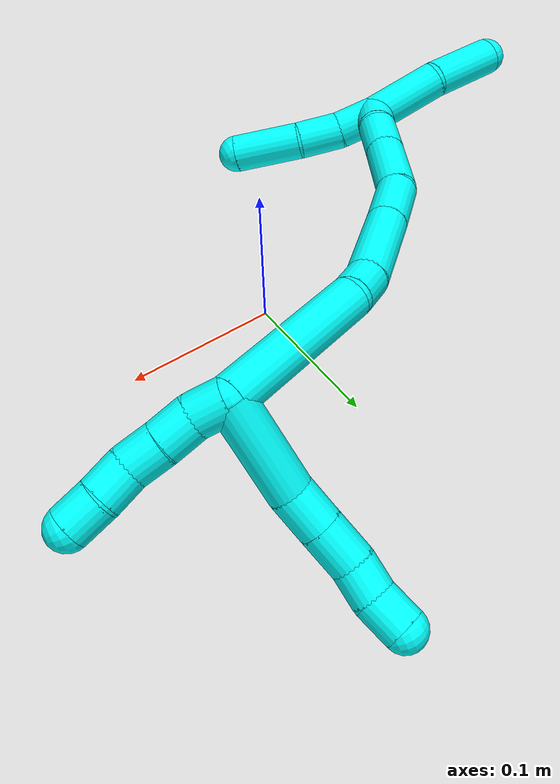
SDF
<sdf version="1.7">
 <world name="default">
  <model name="3">
   <static>0</static>
   <link name="3">
    <collision name="collision-cylinder-e_1_2_8">
     <pose>-0.002595 0.029356 0.002947 -1.47076 -0.087737 0.079381</pose>
     <geometry><cylinder><radius>0.0125</radius><length>0.059235</length></cylinder></geometry>
     <surface>
      <friction><ode><mu>1.16</mu><mu2>1.16</mu2><slip1>0</slip1><slip2>0</slip2></ode></friction>
      <contact><ode><kp>1e+06</kp><kd>1</kd><max_vel>0</max_vel><min_depth>0.001</min_depth></ode></contact>
     </surface>
    </collision>
    <visual name="visual-cylinder-e_1_2_8">
     <pose>-0.002595 0.029356 0.002947 -1.47076 -0.087737 0.079381</pose>
     <geometry><cylinder><radius>0.0125</radius><length>0.059235</length></cylinder></geometry>
     <material><ambient>0.003922 1 0.996078 1</ambient></material>
    </visual>
    <collision name="collision-cylinder-e_2_8_9">
     <pose>-0.003447 0.070142 0.00855 -1.34238 0.147528 -0.117244</pose>
     <geometry><cylinder><radius>0.0125</radius><length>0.023727</length></cylinder></geometry>
     <surface>
      <friction><ode><mu>1.16</mu><mu2>1.16</mu2><slip1>0</slip1><slip2>0</slip2></ode></friction>
      <contact><ode><kp>1e+06</kp><kd>1</kd><max_vel>0</max_vel><min_depth>0.001</min_depth></ode></contact>
     </surface>
    </collision>
    <visual name="visual-cylinder-e_2_8_9">
     <pose>-0.003447 0.070142 0.00855 -1.34238 0.147528 -0.117244</pose>
     <geometry><cylinder><radius>0.0125</radius><length>0.023727</length></cylinder></geometry>
     <material><ambient>0.003922 1 0.996078 1</ambient></material>
    </visual>
    <collision name="collision-cylinder-e_3_9_10">
     <pose>0.000168 0.093732 0.014153 -1.33313 0.148442 -0.116858</pose>
     <geometry><cylinder><radius>0.0125</radius><length>0.025302</length></cylinder></geometry>
     <surface>
      <friction><ode><mu>1.16</mu><mu2>1.16</mu2><slip1>0</slip1><slip2>0</slip2></ode></friction>
      <contact><ode><kp>1e+06</kp><kd>1</kd><max_vel>0</max_vel><min_depth>0.001</min_depth></ode></contact>
     </surface>
    </collision>
    <visual name="visual-cylinder-e_3_9_10">
     <pose>0.000168 0.093732 0.014153 -1.33313 0.148442 -0.116858</pose>
     <geometry><cylinder><radius>0.0125</radius><length>0.025302</length></cylinder></geometry>
     <material><ambient>0.003922 1 0.996078 1</ambient></material>
    </visual>
    <collision name="collision-cylinder-e_4_10_11">
     <pose>0.005116 0.115383 0.017837 -1.49316 0.31261 -0.289572</pose>
     <geometry><cylinder><radius>0.0125</radius><length>0.020009</length></cylinder></geometry>
     <surface>
      <friction><ode><mu>1.16</mu><mu2>1.16</mu2><slip1>0</slip1><slip2>0</slip2></ode></friction>
      <contact><ode><kp>1e+06</kp><kd>1</kd><max_vel>0</max_vel><min_depth>0.001</min_depth></ode></contact>
     </surface>
    </collision>
    <visual name="visual-cylinder-e_4_10_11">
     <pose>0.005116 0.115383 0.017837 -1.49316 0.31261 -0.289572</pose>
     <geometry><cylinder><radius>0.0125</radius><length>0.020009</length></cylinder></geometry>
     <material><ambient>0.003922 1 0.996078 1</ambient></material>
    </visual>
    <collision name="collision-cylinder-e_5_11_6">
     <pose>0.01309 0.134081 0.02162 -1.25144 0.467637 -0.340861</pose>
     <geometry><cylinder><radius>0.0125</radius><length>0.021727</length></cylinder></geometry>
     <surface>
      <friction><ode><mu>1.16</mu><mu2>1.16</mu2><slip1>0</slip1><slip2>0</slip2></ode></friction>
      <contact><ode><kp>1e+06</kp><kd>1</kd><max_vel>0</max_vel><min_depth>0.001</min_depth></ode></contact>
     </surface>
    </collision>
    <visual name="visual-cylinder-e_5_11_6">
     <pose>0.01309 0.134081 0.02162 -1.25144 0.467637 -0.340861</pose>
     <geometry><cylinder><radius>0.0125</radius><length>0.021727</length></cylinder></geometry>
     <material><ambient>0.003922 1 0.996078 1</ambient></material>
    </visual>
    <collision name="collision-cylinder-e_1_2_12">
     <pose>-0.002625 0.000441 -0.009639 -3.09586 -0.265588 2.80248</pose>
     <geometry><cylinder><radius>0.0125</radius><length>0.02</length></cylinder></geometry>
     <surface>
      <friction><ode><mu>1.16</mu><mu2>1.16</mu2><slip1>0</slip1><slip2>0</slip2></ode></friction>
      <contact><ode><kp>1e+06</kp><kd>1</kd><max_vel>0</max_vel><min_depth>0.001</min_depth></ode></contact>
     </surface>
    </collision>
    <visual name="visual-cylinder-e_1_2_12">
     <pose>-0.002625 0.000441 -0.009639 -3.09586 -0.265588 2.80248</pose>
     <geometry><cylinder><radius>0.0125</radius><length>0.02</length></cylinder></geometry>
     <material><ambient>0.003922 1 0.996078 1</ambient></material>
    </visual>
    <collision name="collision-cylinder-e_2_12_13">
     <pose>-0.005594 0.003062 -0.029032 -2.92174 -0.034439 0.309563</pose>
     <geometry><cylinder><radius>0.0125</radius><length>0.02</length></cylinder></geometry>
     <surface>
      <friction><ode><mu>1.16</mu><mu2>1.16</mu2><slip1>0</slip1><slip2>0</slip2></ode></friction>
      <contact><ode><kp>1e+06</kp><kd>1</kd><max_vel>0</max_vel><min_depth>0.001</min_depth></ode></contact>
     </surface>
    </collision>
    <visual name="visual-cylinder-e_2_12_13">
     <pose>-0.005594 0.003062 -0.029032 -2.92174 -0.034439 0.309563</pose>
     <geometry><cylinder><radius>0.0125</radius><length>0.02</length></cylinder></geometry>
     <material><ambient>0.003922 1 0.996078 1</ambient></material>
    </visual>
    <collision name="collision-cylinder-e_3_13_14">
     <pose>-0.00691 0.006973 -0.048586 -2.9667 -0.097323 1.01412</pose>
     <geometry><cylinder><radius>0.0125</radius><length>0.02</length></cylinder></geometry>
     <surface>
      <friction><ode><mu>1.16</mu><mu2>1.16</mu2><slip1>0</slip1><slip2>0</slip2></ode></friction>
      <contact><ode><kp>1e+06</kp><kd>1</kd><max_vel>0</max_vel><min_depth>0.001</min_depth></ode></contact>
     </surface>
    </collision>
    <visual name="visual-cylinder-e_3_13_14">
     <pose>-0.00691 0.006973 -0.048586 -2.9667 -0.097323 1.01412</pose>
     <geometry><cylinder><radius>0.0125</radius><length>0.02</length></cylinder></geometry>
     <material><ambient>0.003922 1 0.996078 1</ambient></material>
    </visual>
    <collision name="collision-cylinder-e_4_14_15">
     <pose>-0.006273 0.011693 -0.067794 -2.83402 0.161562 -0.962597</pose>
     <geometry><cylinder><radius>0.0125</radius><length>0.02</length></cylinder></geometry>
     <surface>
      <friction><ode><mu>1.16</mu><mu2>1.16</mu2><slip1>0</slip1><slip2>0</slip2></ode></friction>
      <contact><ode><kp>1e+06</kp><kd>1</kd><max_vel>0</max_vel><min_depth>0.001</min_depth></ode></contact>
     </surface>
    </collision>
    <visual name="visual-cylinder-e_4_14_15">
     <pose>-0.006273 0.011693 -0.067794 -2.83402 0.161562 -0.962597</pose>
     <geometry><cylinder><radius>0.0125</radius><length>0.02</length></cylinder></geometry>
     <material><ambient>0.003922 1 0.996078 1</ambient></material>
    </visual>
    <collision name="collision-cylinder-e_5_15_5">
     <pose>-0.004495 0.017345 -0.086838 -2.87193 0.016894 -0.124379</pose>
     <geometry><cylinder><radius>0.0125</radius><length>0.02</length></cylinder></geometry>
     <surface>
      <friction><ode><mu>1.16</mu><mu2>1.16</mu2><slip1>0</slip1><slip2>0</slip2></ode></friction>
      <contact><ode><kp>1e+06</kp><kd>1</kd><max_vel>0</max_vel><min_depth>0.001</min_depth></ode></contact>
     </surface>
    </collision>
    <visual name="visual-cylinder-e_5_15_5">
     <pose>-0.004495 0.017345 -0.086838 -2.87193 0.016894 -0.124379</pose>
     <geometry><cylinder><radius>0.0125</radius><length>0.02</length></cylinder></geometry>
     <material><ambient>0.003922 1 0.996078 1</ambient></material>
    </visual>
    <collision name="collision-cylinder-e_1_2_16">
     <pose>-0.021339 -0.003531 0.041731 0.084422 -0.471236 -0.020279</pose>
     <geometry><cylinder><radius>0.0125</radius><length>0.094007</length></cylinder></geometry>
     <surface>
      <friction><ode><mu>1.16</mu><mu2>1.16</mu2><slip1>0</slip1><slip2>0</slip2></ode></friction>
      <contact><ode><kp>1e+06</kp><kd>1</kd><max_vel>0</max_vel><min_depth>0.001</min_depth></ode></contact>
     </surface>
    </collision>
    <visual name="visual-cylinder-e_1_2_16">
     <pose>-0.021339 -0.003531 0.041731 0.084422 -0.471236 -0.020279</pose>
     <geometry><cylinder><radius>0.0125</radius><length>0.094007</length></cylinder></geometry>
     <material><ambient>0.003922 1 0.996078 1</ambient></material>
    </visual>
    <collision name="collision-cylinder-e_2_16_17">
     <pose>-0.050928 -0.007789 0.09117 0.093874 -0.8172 -0.040669</pose>
     <geometry><cylinder><radius>0.0125</radius><length>0.022627</length></cylinder></geometry>
     <surface>
      <friction><ode><mu>1.16</mu><mu2>1.16</mu2><slip1>0</slip1><slip2>0</slip2></ode></friction>
      <contact><ode><kp>1e+06</kp><kd>1</kd><max_vel>0</max_vel><min_depth>0.001</min_depth></ode></contact>
     </surface>
    </collision>
    <visual name="visual-cylinder-e_2_16_17">
     <pose>-0.050928 -0.007789 0.09117 0.093874 -0.8172 -0.040669</pose>
     <geometry><cylinder><radius>0.0125</radius><length>0.022627</length></cylinder></geometry>
     <material><ambient>0.003922 1 0.996078 1</ambient></material>
    </visual>
    <collision name="collision-cylinder-e_3_17_18">
     <pose>-0.079705 -0.016274 0.11558 0.434938 -0.839518 -0.196589</pose>
     <geometry><cylinder><radius>0.0125</radius><length>0.055157</length></cylinder></geometry>
     <surface>
      <friction><ode><mu>1.16</mu><mu2>1.16</mu2><slip1>0</slip1><slip2>0</slip2></ode></friction>
      <contact><ode><kp>1e+06</kp><kd>1</kd><max_vel>0</max_vel><min_depth>0.001</min_depth></ode></contact>
     </surface>
    </collision>
    <visual name="visual-cylinder-e_3_17_18">
     <pose>-0.079705 -0.016274 0.11558 0.434938 -0.839518 -0.196589</pose>
     <geometry><cylinder><radius>0.0125</radius><length>0.055157</length></cylinder></geometry>
     <material><ambient>0.003922 1 0.996078 1</ambient></material>
    </visual>
    <collision name="collision-cylinder-e_4_18_19">
     <pose>-0.113439 -0.029605 0.14297 0.480466 -0.831095 -0.215341</pose>
     <geometry><cylinder><radius>0.0125</radius><length>0.035759</length></cylinder></geometry>
     <surface>
      <friction><ode><mu>1.16</mu><mu2>1.16</mu2><slip1>0</slip1><slip2>0</slip2></ode></friction>
      <contact><ode><kp>1e+06</kp><kd>1</kd><max_vel>0</max_vel><min_depth>0.001</min_depth></ode></contact>
     </surface>
    </collision>
    <visual name="visual-cylinder-e_4_18_19">
     <pose>-0.113439 -0.029605 0.14297 0.480466 -0.831095 -0.215341</pose>
     <geometry><cylinder><radius>0.0125</radius><length>0.035759</length></cylinder></geometry>
     <material><ambient>0.003922 1 0.996078 1</ambient></material>
    </visual>
    <collision name="collision-cylinder-e_5_19_20">
     <pose>-0.14465 -0.045513 0.16033 0.997611 -0.971286 -0.559942</pose>
     <geometry><cylinder><radius>0.0125</radius><length>0.043612</length></cylinder></geometry>
     <surface>
      <friction><ode><mu>1.16</mu><mu2>1.16</mu2><slip1>0</slip1><slip2>0</slip2></ode></friction>
      <contact><ode><kp>1e+06</kp><kd>1</kd><max_vel>0</max_vel><min_depth>0.001</min_depth></ode></contact>
     </surface>
    </collision>
    <visual name="visual-cylinder-e_5_19_20">
     <pose>-0.14465 -0.045513 0.16033 0.997611 -0.971286 -0.559942</pose>
     <geometry><cylinder><radius>0.0125</radius><length>0.043612</length></cylinder></geometry>
     <material><ambient>0.003922 1 0.996078 1</ambient></material>
    </visual>
    <collision name="collision-cylinder-e_6_20_21">
     <pose>-0.173283 -0.063486 0.170976 1.09098 -0.890135 -0.563578</pose>
     <geometry><cylinder><radius>0.0125</radius><length>0.027356</length></cylinder></geometry>
     <surface>
      <friction><ode><mu>1.16</mu><mu2>1.16</mu2><slip1>0</slip1><slip2>0</slip2></ode></friction>
      <contact><ode><kp>1e+06</kp><kd>1</kd><max_vel>0</max_vel><min_depth>0.001</min_depth></ode></contact>
     </surface>
    </collision>
    <visual name="visual-cylinder-e_6_20_21">
     <pose>-0.173283 -0.063486 0.170976 1.09098 -0.890135 -0.563578</pose>
     <geometry><cylinder><radius>0.0125</radius><length>0.027356</length></cylinder></geometry>
     <material><ambient>0.003922 1 0.996078 1</ambient></material>
    </visual>
    <collision name="collision-cylinder-e_7_21_1">
     <pose>-0.193353 -0.074743 0.178576 0.784698 -1.07336 -0.482762</pose>
     <geometry><cylinder><radius>0.0125</radius><length>0.021483</length></cylinder></geometry>
     <surface>
      <friction><ode><mu>1.16</mu><mu2>1.16</mu2><slip1>0</slip1><slip2>0</slip2></ode></friction>
      <contact><ode><kp>1e+06</kp><kd>1</kd><max_vel>0</max_vel><min_depth>0.001</min_depth></ode></contact>
     </surface>
    </collision>
    <visual name="visual-cylinder-e_7_21_1">
     <pose>-0.193353 -0.074743 0.178576 0.784698 -1.07336 -0.482762</pose>
     <geometry><cylinder><radius>0.0125</radius><length>0.021483</length></cylinder></geometry>
     <material><ambient>0.003922 1 0.996078 1</ambient></material>
    </visual>
    <collision name="collision-cylinder-e_1_1_22">
     <pose>-0.205364 -0.078721 0.169089 3.11444 -0.193556 -2.86366</pose>
     <geometry><cylinder><radius>0.0125</radius><length>0.026737</length></cylinder></geometry>
     <surface>
      <friction><ode><mu>1.16</mu><mu2>1.16</mu2><slip1>0</slip1><slip2>0</slip2></ode></friction>
      <contact><ode><kp>1e+06</kp><kd>1</kd><max_vel>0</max_vel><min_depth>0.001</min_depth></ode></contact>
     </surface>
    </collision>
    <visual name="visual-cylinder-e_1_1_22">
     <pose>-0.205364 -0.078721 0.169089 3.11444 -0.193556 -2.86366</pose>
     <geometry><cylinder><radius>0.0125</radius><length>0.026737</length></cylinder></geometry>
     <material><ambient>0.003922 1 0.996078 1</ambient></material>
    </visual>
    <collision name="collision-cylinder-e_2_22_23">
     <pose>-0.209586 -0.081911 0.142019 2.94126 -0.115422 -1.04346</pose>
     <geometry><cylinder><radius>0.0125</radius><length>0.028672</length></cylinder></geometry>
     <surface>
      <friction><ode><mu>1.16</mu><mu2>1.16</mu2><slip1>0</slip1><slip2>0</slip2></ode></friction>
      <contact><ode><kp>1e+06</kp><kd>1</kd><max_vel>0</max_vel><min_depth>0.001</min_depth></ode></contact>
     </surface>
    </collision>
    <visual name="visual-cylinder-e_2_22_23">
     <pose>-0.209586 -0.081911 0.142019 2.94126 -0.115422 -1.04346</pose>
     <geometry><cylinder><radius>0.0125</radius><length>0.028672</length></cylinder></geometry>
     <material><ambient>0.003922 1 0.996078 1</ambient></material>
    </visual>
    <collision name="collision-cylinder-e_3_23_4">
     <pose>-0.217669 -0.089866 0.107339 2.89935 -0.292647 -1.76095</pose>
     <geometry><cylinder><radius>0.0125</radius><length>0.044591</length></cylinder></geometry>
     <surface>
      <friction><ode><mu>1.16</mu><mu2>1.16</mu2><slip1>0</slip1><slip2>0</slip2></ode></friction>
      <contact><ode><kp>1e+06</kp><kd>1</kd><max_vel>0</max_vel><min_depth>0.001</min_depth></ode></contact>
     </surface>
    </collision>
    <visual name="visual-cylinder-e_3_23_4">
     <pose>-0.217669 -0.089866 0.107339 2.89935 -0.292647 -1.76095</pose>
     <geometry><cylinder><radius>0.0125</radius><length>0.044591</length></cylinder></geometry>
     <material><ambient>0.003922 1 0.996078 1</ambient></material>
    </visual>
    <collision name="collision-cylinder-e_1_1_24">
     <pose>-0.203703 -0.079945 0.207295 0.062874 -0.036206 -0.001139</pose>
     <geometry><cylinder><radius>0.0125</radius><length>0.050316</length></cylinder></geometry>
     <surface>
      <friction><ode><mu>1.16</mu><mu2>1.16</mu2><slip1>0</slip1><slip2>0</slip2></ode></friction>
      <contact><ode><kp>1e+06</kp><kd>1</kd><max_vel>0</max_vel><min_depth>0.001</min_depth></ode></contact>
     </surface>
    </collision>
    <visual name="visual-cylinder-e_1_1_24">
     <pose>-0.203703 -0.079945 0.207295 0.062874 -0.036206 -0.001139</pose>
     <geometry><cylinder><radius>0.0125</radius><length>0.050316</length></cylinder></geometry>
     <material><ambient>0.003922 1 0.996078 1</ambient></material>
    </visual>
    <collision name="collision-cylinder-e_2_24_3">
     <pose>-0.211566 -0.080354 0.256207 -0.049112 -0.283665 0.007014</pose>
     <geometry><cylinder><radius>0.0125</radius><length>0.049684</length></cylinder></geometry>
     <surface>
      <friction><ode><mu>1.16</mu><mu2>1.16</mu2><slip1>0</slip1><slip2>0</slip2></ode></friction>
      <contact><ode><kp>1e+06</kp><kd>1</kd><max_vel>0</max_vel><min_depth>0.001</min_depth></ode></contact>
     </surface>
    </collision>
    <visual name="visual-cylinder-e_2_24_3">
     <pose>-0.211566 -0.080354 0.256207 -0.049112 -0.283665 0.007014</pose>
     <geometry><cylinder><radius>0.0125</radius><length>0.049684</length></cylinder></geometry>
     <material><ambient>0.003922 1 0.996078 1</ambient></material>
    </visual>
    <collision name="collision-sphere-3">
     <pose>-0.218519 -0.079183 0.280027 0 -0 0</pose>
     <geometry><sphere><radius>0.0125</radius></sphere></geometry>
     <surface>
      <friction><ode><mu>1.16</mu><mu2>1.16</mu2><slip1>0</slip1><slip2>0</slip2></ode></friction>
      <contact><ode><kp>1e+06</kp><kd>1</kd><max_vel>0</max_vel><min_depth>0.001</min_depth></ode></contact>
     </surface>
    </collision>
    <visual name="visual-sphere-3">
     <pose>-0.218519 -0.079183 0.280027 0 -0 0</pose>
     <geometry><sphere><radius>0.0125</radius></sphere></geometry>
     <material><ambient>0.003922 1 0.996078 1</ambient></material>
    </visual>
    <collision name="collision-sphere-24">
     <pose>-0.204614 -0.081525 0.232387 0 -0 0</pose>
     <geometry><sphere><radius>0.0125</radius></sphere></geometry>
     <surface>
      <friction><ode><mu>1.16</mu><mu2>1.16</mu2><slip1>0</slip1><slip2>0</slip2></ode></friction>
      <contact><ode><kp>1e+06</kp><kd>1</kd><max_vel>0</max_vel><min_depth>0.001</min_depth></ode></contact>
     </surface>
    </collision>
    <visual name="visual-sphere-24">
     <pose>-0.204614 -0.081525 0.232387 0 -0 0</pose>
     <geometry><sphere><radius>0.0125</radius></sphere></geometry>
     <material><ambient>0.003922 1 0.996078 1</ambient></material>
    </visual>
    <collision name="collision-sphere-4">
     <pose>-0.224101 -0.094987 0.086614 0 -0 0</pose>
     <geometry><sphere><radius>0.0125</radius></sphere></geometry>
     <surface>
      <friction><ode><mu>1.16</mu><mu2>1.16</mu2><slip1>0</slip1><slip2>0</slip2></ode></friction>
      <contact><ode><kp>1e+06</kp><kd>1</kd><max_vel>0</max_vel><min_depth>0.001</min_depth></ode></contact>
     </surface>
    </collision>
    <visual name="visual-sphere-4">
     <pose>-0.224101 -0.094987 0.086614 0 -0 0</pose>
     <geometry><sphere><radius>0.0125</radius></sphere></geometry>
     <material><ambient>0.003922 1 0.996078 1</ambient></material>
    </visual>
    <collision name="collision-sphere-23">
     <pose>-0.211237 -0.084745 0.128063 0 -0 0</pose>
     <geometry><sphere><radius>0.0125</radius></sphere></geometry>
     <surface>
      <friction><ode><mu>1.16</mu><mu2>1.16</mu2><slip1>0</slip1><slip2>0</slip2></ode></friction>
      <contact><ode><kp>1e+06</kp><kd>1</kd><max_vel>0</max_vel><min_depth>0.001</min_depth></ode></contact>
     </surface>
    </collision>
    <visual name="visual-sphere-23">
     <pose>-0.211237 -0.084745 0.128063 0 -0 0</pose>
     <geometry><sphere><radius>0.0125</radius></sphere></geometry>
     <material><ambient>0.003922 1 0.996078 1</ambient></material>
    </visual>
    <collision name="collision-sphere-22">
     <pose>-0.207935 -0.079078 0.155974 0 -0 0</pose>
     <geometry><sphere><radius>0.0125</radius></sphere></geometry>
     <surface>
      <friction><ode><mu>1.16</mu><mu2>1.16</mu2><slip1>0</slip1><slip2>0</slip2></ode></friction>
      <contact><ode><kp>1e+06</kp><kd>1</kd><max_vel>0</max_vel><min_depth>0.001</min_depth></ode></contact>
     </surface>
    </collision>
    <visual name="visual-sphere-22">
     <pose>-0.207935 -0.079078 0.155974 0 -0 0</pose>
     <geometry><sphere><radius>0.0125</radius></sphere></geometry>
     <material><ambient>0.003922 1 0.996078 1</ambient></material>
    </visual>
    <collision name="collision-sphere-1">
     <pose>-0.202792 -0.078365 0.182203 0 -0 0</pose>
     <geometry><sphere><radius>0.0125</radius></sphere></geometry>
     <surface>
      <friction><ode><mu>1.16</mu><mu2>1.16</mu2><slip1>0</slip1><slip2>0</slip2></ode></friction>
      <contact><ode><kp>1e+06</kp><kd>1</kd><max_vel>0</max_vel><min_depth>0.001</min_depth></ode></contact>
     </surface>
    </collision>
    <visual name="visual-sphere-1">
     <pose>-0.202792 -0.078365 0.182203 0 -0 0</pose>
     <geometry><sphere><radius>0.0125</radius></sphere></geometry>
     <material><ambient>0.003922 1 0.996078 1</ambient></material>
    </visual>
    <collision name="collision-sphere-21">
     <pose>-0.183913 -0.071122 0.174949 0 -0 0</pose>
     <geometry><sphere><radius>0.0125</radius></sphere></geometry>
     <surface>
      <friction><ode><mu>1.16</mu><mu2>1.16</mu2><slip1>0</slip1><slip2>0</slip2></ode></friction>
      <contact><ode><kp>1e+06</kp><kd>1</kd><max_vel>0</max_vel><min_depth>0.001</min_depth></ode></contact>
     </surface>
    </collision>
    <visual name="visual-sphere-21">
     <pose>-0.183913 -0.071122 0.174949 0 -0 0</pose>
     <geometry><sphere><radius>0.0125</radius></sphere></geometry>
     <material><ambient>0.003922 1 0.996078 1</ambient></material>
    </visual>
    <collision name="collision-sphere-6">
     <pose>0.017987 0.143288 0.024665 0 -0 0</pose>
     <geometry><sphere><radius>0.0125</radius></sphere></geometry>
     <surface>
      <friction><ode><mu>1.16</mu><mu2>1.16</mu2><slip1>0</slip1><slip2>0</slip2></ode></friction>
      <contact><ode><kp>1e+06</kp><kd>1</kd><max_vel>0</max_vel><min_depth>0.001</min_depth></ode></contact>
     </surface>
    </collision>
    <visual name="visual-sphere-6">
     <pose>0.017987 0.143288 0.024665 0 -0 0</pose>
     <geometry><sphere><radius>0.0125</radius></sphere></geometry>
     <material><ambient>0.003922 1 0.996078 1</ambient></material>
    </visual>
    <collision name="collision-sphere-11">
     <pose>0.008193 0.124874 0.018576 0 -0 0</pose>
     <geometry><sphere><radius>0.0125</radius></sphere></geometry>
     <surface>
      <friction><ode><mu>1.16</mu><mu2>1.16</mu2><slip1>0</slip1><slip2>0</slip2></ode></friction>
      <contact><ode><kp>1e+06</kp><kd>1</kd><max_vel>0</max_vel><min_depth>0.001</min_depth></ode></contact>
     </surface>
    </collision>
    <visual name="visual-sphere-11">
     <pose>0.008193 0.124874 0.018576 0 -0 0</pose>
     <geometry><sphere><radius>0.0125</radius></sphere></geometry>
     <material><ambient>0.003922 1 0.996078 1</ambient></material>
    </visual>
    <collision name="collision-sphere-10">
     <pose>0.002039 0.105892 0.017099 0 -0 0</pose>
     <geometry><sphere><radius>0.0125</radius></sphere></geometry>
     <surface>
      <friction><ode><mu>1.16</mu><mu2>1.16</mu2><slip1>0</slip1><slip2>0</slip2></ode></friction>
      <contact><ode><kp>1e+06</kp><kd>1</kd><max_vel>0</max_vel><min_depth>0.001</min_depth></ode></contact>
     </surface>
    </collision>
    <visual name="visual-sphere-10">
     <pose>0.002039 0.105892 0.017099 0 -0 0</pose>
     <geometry><sphere><radius>0.0125</radius></sphere></geometry>
     <material><ambient>0.003922 1 0.996078 1</ambient></material>
    </visual>
    <collision name="collision-sphere-9">
     <pose>-0.001703 0.081572 0.011207 0 -0 0</pose>
     <geometry><sphere><radius>0.0125</radius></sphere></geometry>
     <surface>
      <friction><ode><mu>1.16</mu><mu2>1.16</mu2><slip1>0</slip1><slip2>0</slip2></ode></friction>
      <contact><ode><kp>1e+06</kp><kd>1</kd><max_vel>0</max_vel><min_depth>0.001</min_depth></ode></contact>
     </surface>
    </collision>
    <visual name="visual-sphere-9">
     <pose>-0.001703 0.081572 0.011207 0 -0 0</pose>
     <geometry><sphere><radius>0.0125</radius></sphere></geometry>
     <material><ambient>0.003922 1 0.996078 1</ambient></material>
    </visual>
    <collision name="collision-sphere-2">
     <geometry><sphere><radius>0.0125</radius></sphere></geometry>
     <surface>
      <friction><ode><mu>1.16</mu><mu2>1.16</mu2><slip1>0</slip1><slip2>0</slip2></ode></friction>
      <contact><ode><kp>1e+06</kp><kd>1</kd><max_vel>0</max_vel><min_depth>0.001</min_depth></ode></contact>
     </surface>
    </collision>
    <visual name="visual-sphere-2">
     <geometry><sphere><radius>0.0125</radius></sphere></geometry>
     <material><ambient>0.003922 1 0.996078 1</ambient></material>
    </visual>
    <collision name="collision-sphere-19">
     <pose>-0.126646 -0.035175 0.153657 0 -0 0</pose>
     <geometry><sphere><radius>0.0125</radius></sphere></geometry>
     <surface>
      <friction><ode><mu>1.16</mu><mu2>1.16</mu2><slip1>0</slip1><slip2>0</slip2></ode></friction>
      <contact><ode><kp>1e+06</kp><kd>1</kd><max_vel>0</max_vel><min_depth>0.001</min_depth></ode></contact>
     </surface>
    </collision>
    <visual name="visual-sphere-19">
     <pose>-0.126646 -0.035175 0.153657 0 -0 0</pose>
     <geometry><sphere><radius>0.0125</radius></sphere></geometry>
     <material><ambient>0.003922 1 0.996078 1</ambient></material>
    </visual>
    <collision name="collision-sphere-8">
     <pose>-0.00519 0.058712 0.005893 0 -0 0</pose>
     <geometry><sphere><radius>0.0125</radius></sphere></geometry>
     <surface>
      <friction><ode><mu>1.16</mu><mu2>1.16</mu2><slip1>0</slip1><slip2>0</slip2></ode></friction>
      <contact><ode><kp>1e+06</kp><kd>1</kd><max_vel>0</max_vel><min_depth>0.001</min_depth></ode></contact>
     </surface>
    </collision>
    <visual name="visual-sphere-8">
     <pose>-0.00519 0.058712 0.005893 0 -0 0</pose>
     <geometry><sphere><radius>0.0125</radius></sphere></geometry>
     <material><ambient>0.003922 1 0.996078 1</ambient></material>
    </visual>
    <collision name="collision-sphere-12">
     <pose>-0.00525 0.000882 -0.019279 0 -0 0</pose>
     <geometry><sphere><radius>0.0125</radius></sphere></geometry>
     <surface>
      <friction><ode><mu>1.16</mu><mu2>1.16</mu2><slip1>0</slip1><slip2>0</slip2></ode></friction>
      <contact><ode><kp>1e+06</kp><kd>1</kd><max_vel>0</max_vel><min_depth>0.001</min_depth></ode></contact>
     </surface>
    </collision>
    <visual name="visual-sphere-12">
     <pose>-0.00525 0.000882 -0.019279 0 -0 0</pose>
     <geometry><sphere><radius>0.0125</radius></sphere></geometry>
     <material><ambient>0.003922 1 0.996078 1</ambient></material>
    </visual>
    <collision name="collision-sphere-13">
     <pose>-0.005938 0.005241 -0.038786 0 -0 0</pose>
     <geometry><sphere><radius>0.0125</radius></sphere></geometry>
     <surface>
      <friction><ode><mu>1.16</mu><mu2>1.16</mu2><slip1>0</slip1><slip2>0</slip2></ode></friction>
      <contact><ode><kp>1e+06</kp><kd>1</kd><max_vel>0</max_vel><min_depth>0.001</min_depth></ode></contact>
     </surface>
    </collision>
    <visual name="visual-sphere-13">
     <pose>-0.005938 0.005241 -0.038786 0 -0 0</pose>
     <geometry><sphere><radius>0.0125</radius></sphere></geometry>
     <material><ambient>0.003922 1 0.996078 1</ambient></material>
    </visual>
    <collision name="collision-sphere-14">
     <pose>-0.007882 0.008705 -0.058387 0 -0 0</pose>
     <geometry><sphere><radius>0.0125</radius></sphere></geometry>
     <surface>
      <friction><ode><mu>1.16</mu><mu2>1.16</mu2><slip1>0</slip1><slip2>0</slip2></ode></friction>
      <contact><ode><kp>1e+06</kp><kd>1</kd><max_vel>0</max_vel><min_depth>0.001</min_depth></ode></contact>
     </surface>
    </collision>
    <visual name="visual-sphere-14">
     <pose>-0.007882 0.008705 -0.058387 0 -0 0</pose>
     <geometry><sphere><radius>0.0125</radius></sphere></geometry>
     <material><ambient>0.003922 1 0.996078 1</ambient></material>
    </visual>
    <collision name="collision-sphere-15">
     <pose>-0.004664 0.014681 -0.077201 0 -0 0</pose>
     <geometry><sphere><radius>0.0125</radius></sphere></geometry>
     <surface>
      <friction><ode><mu>1.16</mu><mu2>1.16</mu2><slip1>0</slip1><slip2>0</slip2></ode></friction>
      <contact><ode><kp>1e+06</kp><kd>1</kd><max_vel>0</max_vel><min_depth>0.001</min_depth></ode></contact>
     </surface>
    </collision>
    <visual name="visual-sphere-15">
     <pose>-0.004664 0.014681 -0.077201 0 -0 0</pose>
     <geometry><sphere><radius>0.0125</radius></sphere></geometry>
     <material><ambient>0.003922 1 0.996078 1</ambient></material>
    </visual>
    <collision name="collision-sphere-5">
     <pose>-0.004327 0.020008 -0.096475 0 -0 0</pose>
     <geometry><sphere><radius>0.0125</radius></sphere></geometry>
     <surface>
      <friction><ode><mu>1.16</mu><mu2>1.16</mu2><slip1>0</slip1><slip2>0</slip2></ode></friction>
      <contact><ode><kp>1e+06</kp><kd>1</kd><max_vel>0</max_vel><min_depth>0.001</min_depth></ode></contact>
     </surface>
    </collision>
    <visual name="visual-sphere-5">
     <pose>-0.004327 0.020008 -0.096475 0 -0 0</pose>
     <geometry><sphere><radius>0.0125</radius></sphere></geometry>
     <material><ambient>0.003922 1 0.996078 1</ambient></material>
    </visual>
    <collision name="collision-sphere-16">
     <pose>-0.042678 -0.007063 0.083462 0 -0 0</pose>
     <geometry><sphere><radius>0.0125</radius></sphere></geometry>
     <surface>
      <friction><ode><mu>1.16</mu><mu2>1.16</mu2><slip1>0</slip1><slip2>0</slip2></ode></friction>
      <contact><ode><kp>1e+06</kp><kd>1</kd><max_vel>0</max_vel><min_depth>0.001</min_depth></ode></contact>
     </surface>
    </collision>
    <visual name="visual-sphere-16">
     <pose>-0.042678 -0.007063 0.083462 0 -0 0</pose>
     <geometry><sphere><radius>0.0125</radius></sphere></geometry>
     <material><ambient>0.003922 1 0.996078 1</ambient></material>
    </visual>
    <collision name="collision-sphere-17">
     <pose>-0.059178 -0.008514 0.098877 0 -0 0</pose>
     <geometry><sphere><radius>0.0125</radius></sphere></geometry>
     <surface>
      <friction><ode><mu>1.16</mu><mu2>1.16</mu2><slip1>0</slip1><slip2>0</slip2></ode></friction>
      <contact><ode><kp>1e+06</kp><kd>1</kd><max_vel>0</max_vel><min_depth>0.001</min_depth></ode></contact>
     </surface>
    </collision>
    <visual name="visual-sphere-17">
     <pose>-0.059178 -0.008514 0.098877 0 -0 0</pose>
     <geometry><sphere><radius>0.0125</radius></sphere></geometry>
     <material><ambient>0.003922 1 0.996078 1</ambient></material>
    </visual>
    <collision name="collision-sphere-18">
     <pose>-0.100233 -0.024035 0.132282 0 -0 0</pose>
     <geometry><sphere><radius>0.0125</radius></sphere></geometry>
     <surface>
      <friction><ode><mu>1.16</mu><mu2>1.16</mu2><slip1>0</slip1><slip2>0</slip2></ode></friction>
      <contact><ode><kp>1e+06</kp><kd>1</kd><max_vel>0</max_vel><min_depth>0.001</min_depth></ode></contact>
     </surface>
    </collision>
    <visual name="visual-sphere-18">
     <pose>-0.100233 -0.024035 0.132282 0 -0 0</pose>
     <geometry><sphere><radius>0.0125</radius></sphere></geometry>
     <material><ambient>0.003922 1 0.996078 1</ambient></material>
    </visual>
    <collision name="collision-sphere-20">
     <pose>-0.162653 -0.05585 0.167002 0 -0 0</pose>
     <geometry><sphere><radius>0.0125</radius></sphere></geometry>
     <surface>
      <friction><ode><mu>1.16</mu><mu2>1.16</mu2><slip1>0</slip1><slip2>0</slip2></ode></friction>
      <contact><ode><kp>1e+06</kp><kd>1</kd><max_vel>0</max_vel><min_depth>0.001</min_depth></ode></contact>
     </surface>
    </collision>
    <visual name="visual-sphere-20">
     <pose>-0.162653 -0.05585 0.167002 0 -0 0</pose>
     <geometry><sphere><radius>0.0125</radius></sphere></geometry>
     <material><ambient>0.003922 1 0.996078 1</ambient></material>
    </visual>
    <inertial>
     <pose>-0.092191 -0.01664 0.088323 0 -0 0</pose>
     <mass>0.75</mass>
     <inertia><ixx>0.000101</ixx><ixy>0</ixy><ixz>0</ixz><iyy>0.000121</iyy><iyz>0</iyz><izz>7e-05</izz></inertia>
    </inertial>
   </link>
   <pose>0.101037 0.12433 0.10505 -1.28645 -0.644204 1.21312</pose>
  </model>
 </world>
</sdf>
